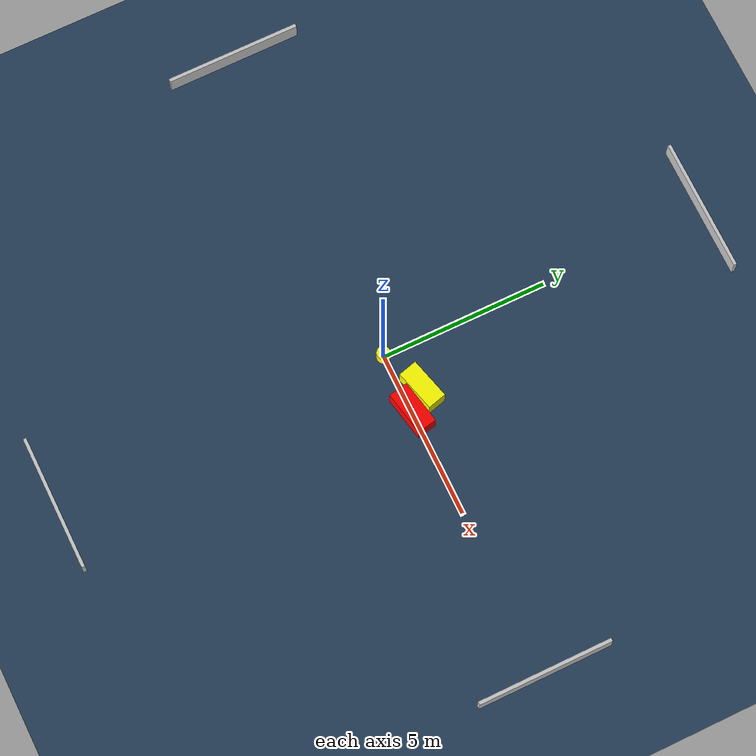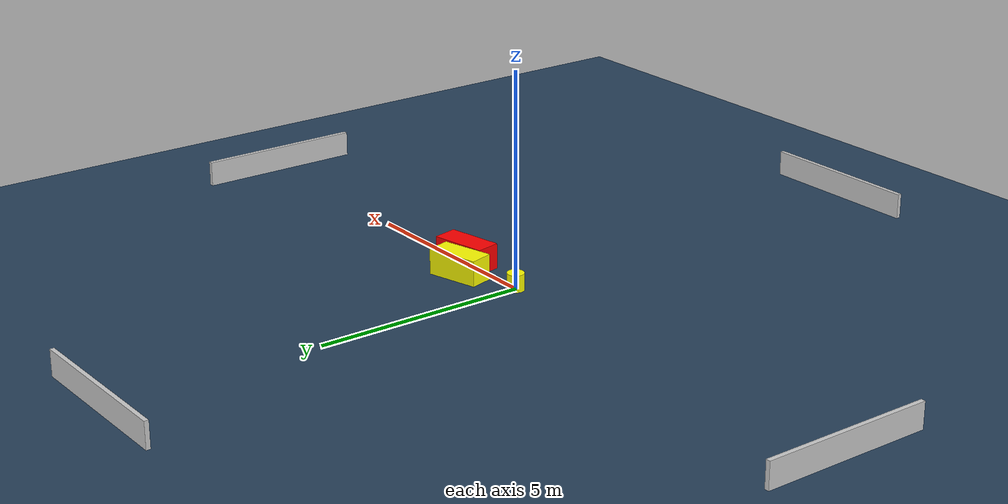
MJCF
<?xml version="1.0" ?>
<mujoco model="generated_environment">
  <option timestep="0.01" integrator="RK4" cone="elliptic"/>
  <default>
    <geom density="1"/>
  </default>
  <asset>
    <texture builtin="gradient" height="3072" name="skybox" rgb1="0.3 0.5 0.7" rgb2="0 0 0" type="skybox" width="512"/>
    <texture builtin="checker" height="300" name="groundplane" rgb1="0.2 0.3 0.4" rgb2="0.1 0.2 0.3" type="2d" width="300"/>
    <material name="groundplane" reflectance="0.2" texrepeat="5 5" texture="groundplane"/>
  </asset>
  <worldbody>
    <light dir="0 0 -1" directional="true" pos="0 0 1.5"/>
    <geom condim="3" friction="0.5 0.005 0.001" material="groundplane" name="floor" pos="0 0 0" size="0 0 0.05" type="plane"/>
    <body name="walls">
      <geom name="wall_1" condim="4" pos="-10.0 0.0 0.3" rgba="0.800000011920929 0.800000011920929 0.800000011920929 1.0" size="0.05 2.0 0.3" type="box"/>
      <geom name="wall_2" condim="4" pos="10.0 0.0 0.3" rgba="0.800000011920929 0.800000011920929 0.800000011920929 1.0" size="0.05 2.0 0.3" type="box"/>
      <geom name="wall_3" condim="4" pos="0.0 -10.0 0.3" rgba="0.800000011920929 0.800000011920929 0.800000011920929 1.0" size="2.0 0.05 0.3" type="box"/>
      <geom name="wall_4" condim="4" pos="0.0 10.0 0.3" rgba="0.800000011920929 0.800000011920929 0.800000011920929 1.0" size="2.0 0.05 0.3" type="box"/>
    </body>
    <body name="robot">
      <joint name="joint_x" type="slide" pos="0 0 0" axis="1 0 0"/>
      <joint name="joint_y" type="slide" pos="0 0 0" axis="0 1 0"/>
      <geom name="robot" type="cylinder" pos="0.0 0.0 0.2" size="0.2 0.2 0.0" mass="5.0" friction="1.0 0.005 0.0001" condim="4" rgba="1.0 1.0 0.0 1.0"/>
    </body>
    <body name="obstacle_1_movable">
      <geom name="obstacle_1_movable" condim="4" pos="1.3492702535184324 0.5409165160859994 0.3" euler="0 0 194.96462040724006" friction="0.0 0.005 0.001" rgba="1.0 1.0 0.0 1.0" size="0.628251760520705 0.28521369691636167 0.3" type="box" mass="0.1"/>
      <joint type="free"/>
    </body>
    <body name="obstacle_2_static">
      <geom name="obstacle_2_static" condim="4" pos="1.832673009139398 0.007619193413405567 0.3" euler="0 0 101.44404747322803" friction="0.0 0.005 0.001" rgba="1.0 0.0 0.0 1.0" size="0.2923791263991134 0.6651116862906346 0.3" type="box"/>
    </body>
  </worldbody>
  <actuator>
    <motor name="actuator_x" joint="joint_x" gear="1" ctrlrange="-1 1"/>
    <motor name="actuator_y" joint="joint_y" gear="1" ctrlrange="-1 1"/>
  </actuator>
</mujoco>
